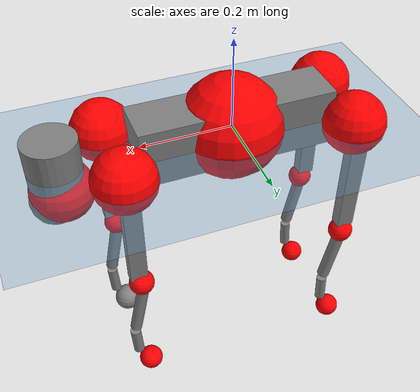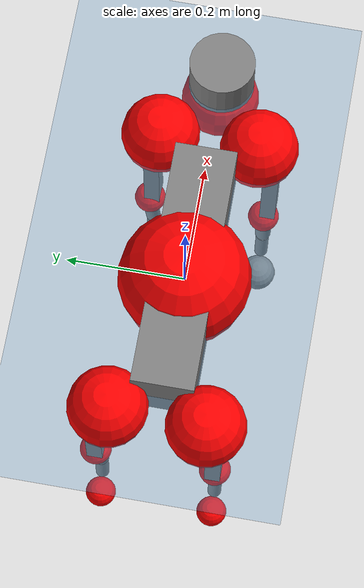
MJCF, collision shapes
<mujoco model="go2">
  <compiler angle="radian" assetdir="assets" balanceinertia="true" inertiafromgeom="false"/>

  <option timestep="0.005" density="1.2" viscosity="2e-05"/>

  <size nkey="1"/>

  <visual>
    <quality shadowsize="8192"/>
    <map shadowclip="0.5"/>
  </visual>

  <default>
    <default class="/">
      <geom contype="0" conaffinity="0" group="1" solref="-1000 -80"/>
      <site size="0.01 0.005 0.005" group="5"/>
      <general forcelimited="true" biastype="affine" gainprm="20" biasprm="0 -20 -0.5"/>
      <default class="go2">
        <joint armature="0.01" damping="0.01" frictionloss="0.2"/>
        <geom condim="1" margin="0.001"/>
        <default class="visual">
          <geom type="mesh" group="2"/>
        </default>
        <default class="collision">
          <geom group="3"/>
          <default class="foot">
            <geom size="0.022 0 0" condim="6" priority="1" friction="0.8 0.02 0.01" solimp="0.015 1 0.022"/>
          </default>
        </default>
        <default class="reward_collision_sphere">
          <geom group="5" rgba="1 0 0 1"/>
        </default>
      </default>
    </default>
  </default>

  <asset>
    <texture type="skybox" colorspace="auto" name="//unnamed_texture_0" builtin="gradient" rgb1="0.95 0.95 0.95" rgb2="0.95 0.95 0.95" width="100" height="600"/>
    <texture type="2d" colorspace="auto" name="texplane" builtin="checker" rgb1="0.345 0.575 0.748" rgb2="0.345 0.575 0.748" markrgb="1 1 1" width="512" height="512"/>
    <material name="MatPlane" class="/" texture="texplane" texuniform="true" texrepeat="2 2" specular="0.9"/>
    <material name="metal" class="/" rgba="0.9 0.95 0.95 1"/>
    <material name="black" class="/" rgba="0 0 0 1"/>
    <material name="white" class="/"/>
    <material name="gray" class="/" rgba="0.671705 0.692426 0.77427 1"/>
    <mesh name="base_0" class="/" file="base_0.obj"/>
    <mesh name="base_1" class="/" file="base_1.obj"/>
    <mesh name="base_2" class="/" file="base_2.obj"/>
    <mesh name="base_3" class="/" file="base_3.obj"/>
    <mesh name="base_4" class="/" file="base_4.obj"/>
    <mesh name="hip_0" class="/" file="hip_0.obj"/>
    <mesh name="hip_1" class="/" file="hip_1.obj"/>
    <mesh name="thigh_0" class="/" file="thigh_0.obj"/>
    <mesh name="thigh_1" class="/" file="thigh_1.obj"/>
    <mesh name="thigh_mirror_0" class="/" file="thigh_mirror_0.obj"/>
    <mesh name="thigh_mirror_1" class="/" file="thigh_mirror_1.obj"/>
    <mesh name="calf_0" class="/" file="calf_0.obj"/>
    <mesh name="calf_1" class="/" file="calf_1.obj"/>
    <mesh name="calf_mirror_0" class="/" file="calf_mirror_0.obj"/>
    <mesh name="calf_mirror_1" class="/" file="calf_mirror_1.obj"/>
    <mesh name="foot" class="/" file="foot.obj"/>
  </asset>

  <worldbody>
    <geom name="floor" class="/" size="100 100 0.125" type="plane" group="0" material="MatPlane"/>
    <light name="toplight_shadow" class="/" pos="0 0 5" dir="0.0990148 0.0990148 -0.990148" type="directional" ambient="0.04 0.04 0.04" diffuse="0.55 0.55 0.55" specular="0.12 0.12 0.12"/>
    <light name="toplight_fill" class="/" pos="0 0 5" dir="0.0990148 0.0990148 -0.990148" type="directional" castshadow="false" ambient="0.04 0.04 0.04" diffuse="0.3 0.3 0.3" specular="0.08 0.08 0.08"/>
    <body name="trunk" childclass="go2" pos="0.00214166 0.000591073 0.00352342" quat="0.999999 -0.000198053 0.0010088 0.000319043">
      <inertial pos="0.0318919 0.00613294 -0.0078068" quat="-5.38583e-05 0.71322 -0.00301346 0.700934" mass="9.982" diaginertia="0.356072 0.0190498 0.0956531"/>
      <joint name="//unnamed_joint_0" type="free" armature="0" damping="0" frictionloss="0"/>
      <geom name="//unnamed_geom_1" class="visual" material="black" mesh="base_0"/>
      <geom name="//unnamed_geom_2" class="visual" material="black" mesh="base_1"/>
      <geom name="//unnamed_geom_3" class="visual" material="black" mesh="base_2"/>
      <geom name="//unnamed_geom_4" class="visual" material="white" mesh="base_3"/>
      <geom name="//unnamed_geom_5" class="visual" material="gray" mesh="base_4"/>
      <geom name="trunk_1" class="collision" size="0.21126 0.052506 0.064018" type="box"/>
      <geom name="trunk_2" class="collision" size="0.0561562 0.0505406" pos="0.369056 0 0.0134198" type="cylinder"/>
      <geom name="trunk_3" class="collision" size="0.0527868" pos="0.379415 0 -0.0805187"/>
      <geom name="//unnamed_geom_9" class="reward_collision_sphere" size="0.112312"/>
      <geom name="//unnamed_geom_10" class="reward_collision_sphere" size="0.0673874" pos="0.362581 0 -0.060389"/>
      <site name="imu" pos="0.00771671 -0.0103882 0.026528" size="0.0112312"/>
      <camera name="track" pos="0 -1.46492 0" quat="0.707107 0.707107 0 0" mode="trackcom"/>
      <camera name="ego_camera" pos="0.404019 0 0.060389" quat="-0.5 -0.5 0.5 0.5"/>
      <body name="FL_hip" pos="0.252047 0.0342299 -0.00258614" quat="1 0.000538721 0.000458536 0.000539176">
        <inertial pos="-0.01327 0.0029314 -0.00278188" quat="0.491552 0.508419 0.506523 0.493276" mass="1.01731" diaginertia="0.00342442 0.000121751 0.00205721"/>
        <joint name="FL_hip_joint" pos="0 0 0" axis="0.99977 -0.00941235 -0.019293" range="-1.09686 1.00887" armature="0.0071056" damping="0.0453183" frictionloss="0.204081"/>
        <geom name="//unnamed_geom_11" class="visual" material="metal" mesh="hip_0"/>
        <geom name="//unnamed_geom_12" class="visual" material="gray" mesh="hip_1"/>
        <geom name="//unnamed_geom_13" class="collision" size="0.0516637 0.0224625" pos="0 0.0585968 0" quat="0.707107 0.707107 0 0" type="cylinder"/>
        <geom name="//unnamed_geom_14" class="reward_collision_sphere" size="0.0673874" pos="0 0.0512722 0"/>
        <body name="FL_thigh" pos="-0.000875831 0.0659483 -7.77732e-05" quat="0.999998 -0.000621957 -0.00061835 0.00170769">
          <inertial pos="-0.00537168 -0.0166944 -0.0504287" quat="0.830327 0.0851439 -0.0153332 0.550521" mass="1.62002" diaginertia="0.0240477 0.00126253 0.00383022"/>
          <joint name="FL_thigh_joint" pos="0 0 0" axis="-0.0248242 0.999216 0.030849" stiffness="0.00503209" range="-1.59475 3.53257" armature="0.0122375" damping="0.00621036" frictionloss="0.292623"/>
          <geom name="//unnamed_geom_15" class="visual" material="metal" mesh="thigh_0"/>
          <geom name="//unnamed_geom_16" class="visual" material="gray" mesh="thigh_1"/>
          <geom name="//unnamed_geom_17" class="collision" size="0.119613 0.0137583 0.0190931" pos="0 0 -0.142921" quat="0.707107 0 0.707107 0" type="box"/>
          <body name="FL_calf" pos="-0.00503581 0.00531473 -0.277728" quat="0.999997 0.00152822 -0.000723274 -0.00184839">
            <inertial pos="0.00672168 -0.000842934 -0.190917" quat="0.708473 0.000628117 0.000393849 0.705737" mass="0.342068" diaginertia="0.00555759 0.000311013 0.000231974"/>
            <joint name="FL_calf_joint" pos="0 0 0" axis="-0.0720735 0.996728 -0.0365771" range="-2.66049 -0.841024" armature="0.0105275" damping="0.0363091" frictionloss="0.193369"/>
            <geom name="//unnamed_geom_18" class="visual" material="gray" mesh="calf_0"/>
            <geom name="//unnamed_geom_19" class="visual" material="black" mesh="calf_1"/>
            <geom name="FL_calf0" class="collision" size="0.0134775 0.0673874" pos="0.0103595 0 -0.0805187" quat="0.994493 0 -0.104807 0" type="cylinder"/>
            <geom name="//unnamed_geom_21" class="collision" size="0.0123544 0.0365015" pos="0.0258986 0 -0.198613" quat="0.999688 0 0.0249974 0" type="cylinder"/>
            <geom name="//unnamed_geom_22" class="visual" pos="0 0 -0.285841" quat="1 0 0 0" material="black" mesh="foot"/>
            <geom name="FL_foot" class="foot" size="0.0199578" pos="-0.00258986 0 -0.285841"/>
            <geom name="//unnamed_geom_24" class="reward_collision_sphere" size="0.0280781"/>
            <geom name="//unnamed_geom_25" class="reward_collision_sphere" size="0.0280781" pos="-0.00258986 0 -0.285841"/>
            <site name="FL_foot" class="foot" pos="-0.00258986 0 -0.285841" size="0.0112312"/>
          </body>
        </body>
      </body>
      <body name="FR_hip" pos="0.253411 -0.0331574 -0.00331316" quat="1 2.63133e-05 9.67e-05 -4.30259e-05">
        <inertial pos="-0.0128918 -0.00329239 0.00171264" quat="0.498172 0.506126 0.502086 0.493529" mass="0.913862" diaginertia="0.00313984 0.000118294 0.00200244"/>
        <joint name="FR_hip_joint" pos="0 0 0" axis="0.999998 -0.00197415 0.00012252" range="-0.918562 1.08573" armature="0.0143942" damping="0" frictionloss="0.294019"/>
        <geom name="//unnamed_geom_26" class="visual" pos="0 -5.30987e-09 -2.27751e-07" quat="4.63268e-05 1 0 0" material="metal" mesh="hip_0"/>
        <geom name="//unnamed_geom_27" class="visual" pos="0 -8.60793e-09 5.63316e-07" quat="4.63268e-05 1 0 0" material="gray" mesh="hip_1"/>
        <geom name="//unnamed_geom_28" class="collision" size="0.0516637 0.0224625" pos="0 -0.0585968 0" quat="0.707107 0.707107 0 0" type="cylinder"/>
        <geom name="//unnamed_geom_29" class="reward_collision_sphere" size="0.0673874" pos="0 -0.0512722 0"/>
        <body name="FR_thigh" pos="0.000667501 -0.0769997 0.00167313" quat="1 -0.000371542 0.000367115 -0.000101422">
          <inertial pos="-0.0048633 0.0183171 -0.0460713" quat="0.536217 -0.0194939 0.0637132 0.841446" mass="1.87457" diaginertia="0.0234656 0.00125343 0.00398393"/>
          <joint name="FR_thigh_joint" pos="0 0 0" axis="0.0233175 -0.999719 -0.0041751" stiffness="0.0104079" range="-3.65041 1.50708" armature="0.0112185" damping="0.0282238" frictionloss="0.121775"/>
          <geom name="//unnamed_geom_30" class="visual" material="metal" mesh="thigh_mirror_0"/>
          <geom name="//unnamed_geom_31" class="visual" material="gray" mesh="thigh_mirror_1"/>
          <geom name="//unnamed_geom_32" class="collision" size="0.119613 0.0137583 0.0190931" pos="0 0 -0.142921" quat="0.707107 0 0.707107 0" type="box"/>
          <body name="FR_calf" pos="-0.0060782 0.00700509 -0.286298" quat="1 0.000733784 -9.14254e-05 0.000577335">
            <inertial pos="0.0080527 -0.00126921 -0.196624" quat="0.698529 -0.0130643 0.00196967 0.71546" mass="0.336205" diaginertia="0.00601104 0.000330145 0.000238926"/>
            <joint name="FR_calf_joint" pos="0 0 0" axis="-0.00383367 -0.999919 0.0121728" stiffness="0.00733562" range="0.884409 2.66544" armature="0.01093" damping="0.0155089" frictionloss="0.309518"/>
            <geom name="//unnamed_geom_33" class="visual" material="gray" mesh="calf_mirror_0"/>
            <geom name="//unnamed_geom_34" class="visual" material="black" mesh="calf_mirror_1"/>
            <geom name="FR_calf0" class="collision" size="0.0146006 0.0673874" pos="0.0129493 0 -0.0805187" quat="0.995004 0 -0.0998334 0" type="cylinder"/>
            <geom name="//unnamed_geom_36" class="collision" size="0.0123544 0.0365015" pos="0.0258986 0 -0.198613" quat="0.999688 0 0.0249974 0" type="cylinder"/>
            <geom name="//unnamed_geom_37" class="visual" pos="0 0 -0.285841" quat="1 0 0 0" material="black" mesh="foot"/>
            <geom name="FR_foot" class="foot" size="0.033105" pos="-0.00258986 0 -0.285841"/>
            <geom name="//unnamed_geom_39" class="reward_collision_sphere" size="0.0280781"/>
            <geom name="//unnamed_geom_40" class="reward_collision_sphere" size="0.0280781" pos="-0.00258986 0 -0.285841"/>
            <site name="FR_foot" class="foot" pos="-0.00258986 0 -0.285841" size="0.0112312"/>
          </body>
        </body>
      </body>
      <body name="RL_hip" pos="-0.242555 0.0334167 0.000563773" quat="1 -0.000316263 0.000100756 -0.000420522">
        <inertial pos="0.0060926 -0.00515374 0.00231868" quat="0.513569 0.491788 0.490989 0.503309" mass="0.973241" diaginertia="0.0034301 0.000121437 0.00240259"/>
        <joint name="RL_hip_joint" pos="0 0 0" axis="-1 0.00016738 -1.1142e-05" range="-1.04661 1.22982" armature="0.0150956" damping="0.0171189" frictionloss="0.205234"/>
        <geom name="//unnamed_geom_41" class="visual" pos="4.09841e-10 0 8.03383e-08" quat="4.63268e-05 0 1 0" material="metal" mesh="hip_0"/>
        <geom name="//unnamed_geom_42" class="visual" pos="6.64401e-10 0 7.12486e-08" quat="4.63268e-05 0 1 0" material="gray" mesh="hip_1"/>
        <geom name="//unnamed_geom_43" class="collision" size="0.0516637 0.0224625" pos="0 0.0585968 0" quat="0.707107 0.707107 0 0" type="cylinder"/>
        <geom name="//unnamed_geom_44" class="reward_collision_sphere" size="0.0673874" pos="0 0.0512722 0"/>
        <body name="RL_thigh" pos="0.00285025 0.0788591 -0.00117275" quat="1 2.17161e-05 -2.45927e-05 -4.90448e-06">
          <inertial pos="-0.00510296 -0.0213044 -0.0458658" quat="0.830609 0.0744827 -0.0179173 0.551562" mass="1.64198" diaginertia="0.0218833 0.001273 0.00387012"/>
          <joint name="RL_thigh_joint" pos="0 0 0" axis="-0.00666802 0.999618 0.0268365" range="-0.503233 4.49043" armature="0.012019" damping="0.0133655" frictionloss="0.226918"/>
          <geom name="//unnamed_geom_45" class="visual" material="metal" mesh="thigh_0"/>
          <geom name="//unnamed_geom_46" class="visual" material="gray" mesh="thigh_1"/>
          <geom name="//unnamed_geom_47" class="collision" size="0.119613 0.0137583 0.0190931" pos="0 0 -0.142921" quat="0.707107 0 0.707107 0" type="box"/>
          <body name="RL_calf" pos="0.00293188 0.00289088 -0.285826" quat="1 0.000171349 -5.3925e-05 -1.45864e-05">
            <inertial pos="0.00799438 -0.000484383 -0.191776" quat="0.730834 0.00989262 -0.0371744 0.68147" mass="0.342872" diaginertia="0.00557669 0.000317541 0.000255768"/>
            <joint name="RL_calf_joint" pos="0 0 0" axis="-0.0174678 0.999787 -0.0110358" stiffness="0.00841436" range="-2.71458 -0.830554" armature="0.0135079" damping="0" frictionloss="0.190479"/>
            <geom name="//unnamed_geom_48" class="visual" material="gray" mesh="calf_0"/>
            <geom name="//unnamed_geom_49" class="visual" material="black" mesh="calf_1"/>
            <geom name="RL_calf0" class="collision" size="0.0146006 0.0673874" pos="0.0129493 0 -0.0805187" quat="0.995004 0 -0.0998334 0" type="cylinder"/>
            <geom name="//unnamed_geom_51" class="collision" size="0.0123544 0.0365015" pos="0.0258986 0 -0.198613" quat="0.999688 0 0.0249974 0" type="cylinder"/>
            <geom name="//unnamed_geom_52" class="visual" pos="0 0 -0.285841" quat="1 0 0 0" material="black" mesh="foot"/>
            <geom name="RL_foot" class="foot" size="0.0157949" pos="-0.00258986 0 -0.285841"/>
            <geom name="//unnamed_geom_54" class="reward_collision_sphere" size="0.0280781"/>
            <geom name="//unnamed_geom_55" class="reward_collision_sphere" size="0.0280781" pos="-0.00258986 0 -0.285841"/>
            <site name="RL_foot" class="foot" pos="-0.00258986 0 -0.285841" size="0.0112312"/>
          </body>
        </body>
      </body>
      <body name="RR_hip" pos="-0.247637 -0.0275156 0.000982858" quat="0.999998 0.00211642 -0.000464044 0.000549846">
        <inertial pos="0.0137886 -0.00253048 -0.00583008" quat="0.502467 0.494193 0.496038 0.507196" mass="0.97241" diaginertia="0.00328398 0.000128364 0.00232692"/>
        <joint name="RR_hip_joint" pos="0 0 0" axis="-1 -0.00016586 0.000199434" stiffness="0.00665303" range="-0.93948 0.888242" armature="0.0117926" damping="0.0278844" frictionloss="0.222434"/>
        <geom name="//unnamed_geom_56" class="visual" pos="-4.29314e-10 -5.30987e-09 3.08089e-07" quat="2.14617e-09 4.63268e-05 4.63268e-05 -1" material="metal" mesh="hip_0"/>
        <geom name="//unnamed_geom_57" class="visual" pos="-6.16236e-10 -8.60793e-09 -4.92067e-07" quat="2.14617e-09 4.63268e-05 4.63268e-05 -1" material="gray" mesh="hip_1"/>
        <geom name="//unnamed_geom_58" class="collision" size="0.0516637 0.0224625" pos="0 -0.0585968 0" quat="0.707107 0.707107 0 0" type="cylinder"/>
        <geom name="//unnamed_geom_59" class="reward_collision_sphere" size="0.0673874" pos="0 -0.0512722 0"/>
        <body name="RR_thigh" pos="0.00316064 -0.068736 -0.00686642" quat="1 0.000289026 -7.96182e-05 0.000738344">
          <inertial pos="-0.0085486 0.0148984 -0.04205" quat="0.551002 -0.0206982 0.0838448 0.830023" mass="1.98445" diaginertia="0.025701 0.00139366 0.0043233"/>
          <joint name="RR_thigh_joint" pos="0 0 0" axis="0.0229154 -0.999695 0.00925184" range="-4.50501 0.515352" armature="0.0114136" damping="0.00329145" frictionloss="0.226111"/>
          <geom name="//unnamed_geom_60" class="visual" material="metal" mesh="thigh_mirror_0"/>
          <geom name="//unnamed_geom_61" class="visual" material="gray" mesh="thigh_mirror_1"/>
          <geom name="//unnamed_geom_62" class="collision" size="0.119613 0.0137583 0.0190931" pos="0 0 -0.142921" quat="0.707107 0 0.707107 0" type="box"/>
          <body name="RR_calf" pos="0.0065477 -0.00181225 -0.28338" quat="1 0.000240304 0.000464085 -0.000377286">
            <inertial pos="0.00832463 0.00100744 -0.188054" quat="0.71422 0.0145624 0.0129837 0.699649" mass="0.360314" diaginertia="0.00570777 0.000296158 0.000242457"/>
            <joint name="RR_calf_joint" pos="0 0 0" axis="-0.0112153 -0.99981 -0.0159207" range="0.806134 2.71141" armature="0.0155019" damping="0.0141254" frictionloss="0.224911"/>
            <geom name="//unnamed_geom_63" class="visual" material="gray" mesh="calf_mirror_0"/>
            <geom name="//unnamed_geom_64" class="visual" material="black" mesh="calf_mirror_1"/>
            <geom name="RR_calf0" class="collision" size="0.0146006 0.0673874" pos="0.0129493 0 -0.0805187" quat="0.995004 0 -0.0998334 0" type="cylinder"/>
            <geom name="//unnamed_geom_66" class="collision" size="0.0123544 0.0365015" pos="0.0258986 0 -0.198613" quat="0.999688 0 0.0249974 0" type="cylinder"/>
            <geom name="//unnamed_geom_67" class="visual" pos="0 0 -0.285841" quat="1 0 0 0" material="black" mesh="foot"/>
            <geom name="RR_foot" class="foot" size="0.027484" pos="-0.00258986 0 -0.285841"/>
            <geom name="//unnamed_geom_69" class="reward_collision_sphere" size="0.0280781"/>
            <geom name="//unnamed_geom_70" class="reward_collision_sphere" size="0.0280781" pos="-0.00258986 0 -0.285841"/>
            <site name="RR_foot" class="foot" pos="-0.00258986 0 -0.285841" size="0.0112312"/>
          </body>
        </body>
      </body>
    </body>
  </worldbody>

  <contact>
    <pair class="/" geom1="floor" geom2="FL_foot" name="//unnamed_contact_0"/>
    <pair class="/" geom1="floor" geom2="FR_foot" name="//unnamed_contact_1"/>
    <pair class="/" geom1="floor" geom2="RL_foot" name="//unnamed_contact_2"/>
    <pair class="/" geom1="floor" geom2="RR_foot" name="//unnamed_contact_3"/>
  </contact>

  <actuator>
    <general name="FL_hip" class="/" joint="FL_hip_joint" forcerange="-24.6445 24.6445" gainprm="23.4775" biasprm="0 -23.4775 -0.541945"/>
    <general name="FL_thigh" class="/" joint="FL_thigh_joint" forcerange="-28.72 28.72" gainprm="23.4775" biasprm="0 -23.4775 -0.541945"/>
    <general name="FL_calf" class="/" joint="FL_calf_joint" forcerange="-48.5162 48.5162" gainprm="23.4775" biasprm="0 -23.4775 -0.541945"/>
    <general name="FR_hip" class="/" joint="FR_hip_joint" forcerange="-29.2384 29.2384" gainprm="23.4775" biasprm="0 -23.4775 -0.541945"/>
    <general name="FR_thigh" class="/" joint="FR_thigh_joint" forcerange="-25.6536 25.6536" gainprm="23.4775" biasprm="0 -23.4775 -0.541945"/>
    <general name="FR_calf" class="/" joint="FR_calf_joint" forcerange="-62.1367 62.1367" gainprm="23.4775" biasprm="0 -23.4775 -0.541945"/>
    <general name="RL_hip" class="/" joint="RL_hip_joint" forcerange="-26.7148 26.7148" gainprm="23.4775" biasprm="0 -23.4775 -0.541945"/>
    <general name="RL_thigh" class="/" joint="RL_thigh_joint" forcerange="-32.7001 32.7001" gainprm="23.4775" biasprm="0 -23.4775 -0.541945"/>
    <general name="RL_calf" class="/" joint="RL_calf_joint" forcerange="-48.4155 48.4155" gainprm="23.4775" biasprm="0 -23.4775 -0.541945"/>
    <general name="RR_hip" class="/" joint="RR_hip_joint" forcerange="-26.197 26.197" gainprm="23.4775" biasprm="0 -23.4775 -0.541945"/>
    <general name="RR_thigh" class="/" joint="RR_thigh_joint" forcerange="-34.0344 34.0344" gainprm="23.4775" biasprm="0 -23.4775 -0.541945"/>
    <general name="RR_calf" class="/" joint="RR_calf_joint" forcerange="-40.851 40.851" gainprm="23.4775" biasprm="0 -23.4775 -0.541945"/>
  </actuator>

  <sensor>
    <gyro site="imu" name="imu_angular_velocity"/>
    <velocimeter site="imu" name="imu_linear_velocity"/>
    <framelinvel objtype="site" objname="FL_foot" name="FL_foot_global_linear_velocity"/>
    <framelinvel objtype="site" objname="FR_foot" name="FR_foot_global_linear_velocity"/>
    <framelinvel objtype="site" objname="RL_foot" name="RL_foot_global_linear_velocity"/>
    <framelinvel objtype="site" objname="RR_foot" name="RR_foot_global_linear_velocity"/>
  </sensor>

  <keyframe>
    <key name="home" qpos="0 0 0.325 1 0 0 0 0.1 0.8 -1.5 -0.1 -0.8 1.5 -0.1 0.8 -1.5 0.1 -0.8 1.5"/>
  </keyframe>
</mujoco>
